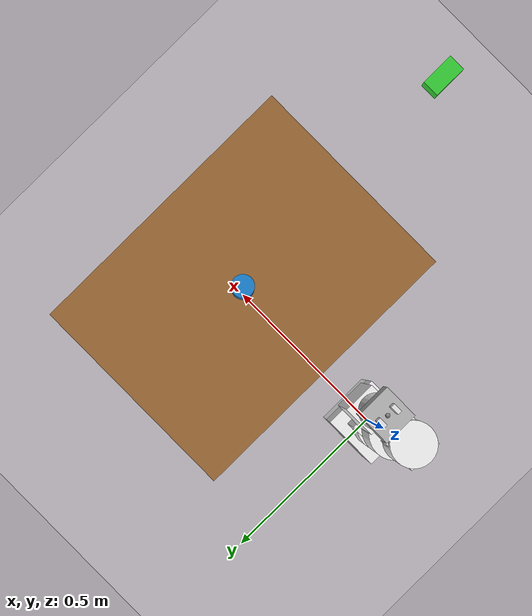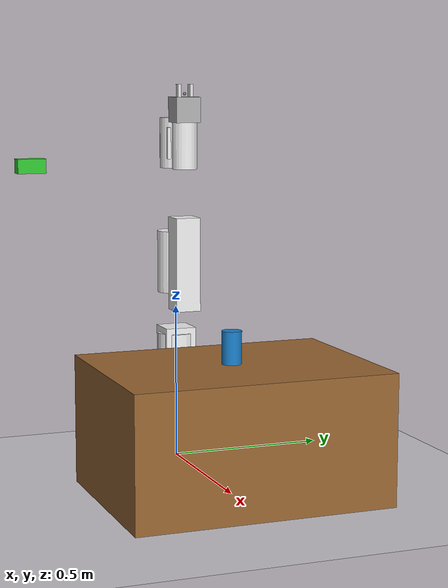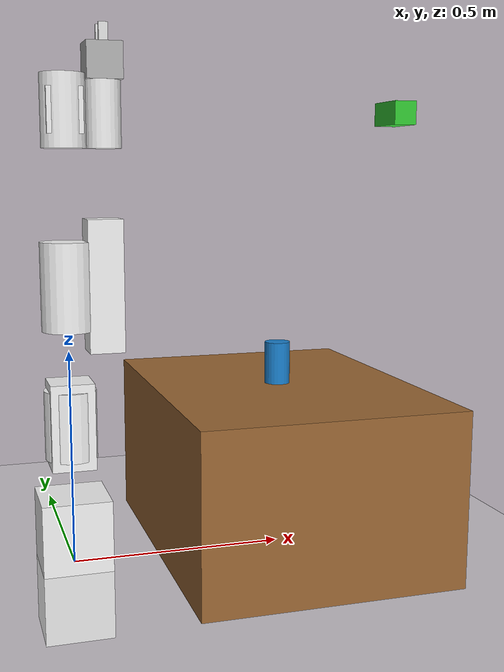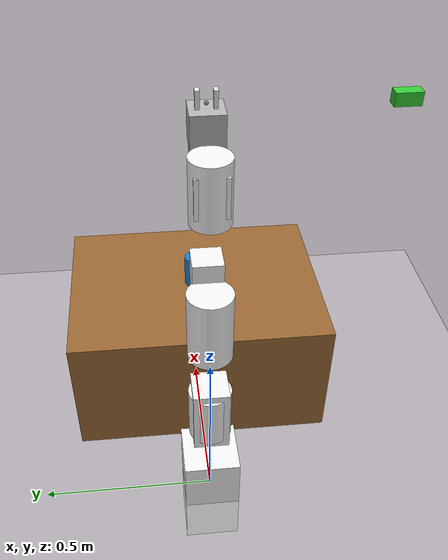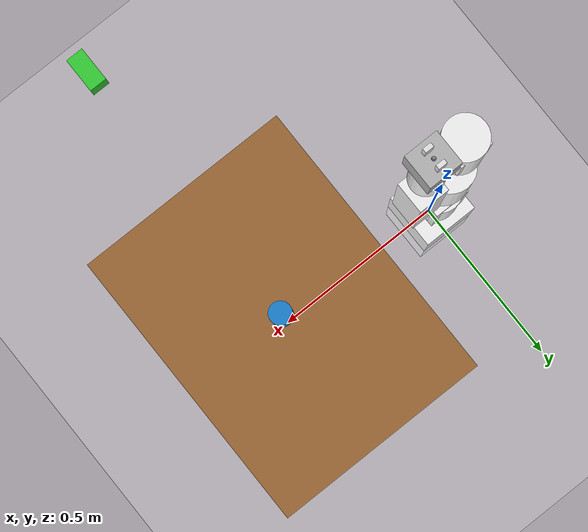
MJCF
<mujoco model="simple_grasp">
  <compiler angle="radian" autolimits="true"/>
  <option gravity="0 0 -9.81" timestep="0.002"/>

  <worldbody>
    <light pos="0 0 2" dir="0 0 -1" directional="true"/>
    <geom name="floor" type="plane" size="2 2 0.1" rgba="0.9 0.9 0.9 1"/>

    <!-- Table -->
    <body name="table" pos="0.5 0 0.2">
      <geom type="box" size="0.3 0.4 0.2" rgba="0.6 0.4 0.2 1"/>
    </body>

    <!-- Target object (graspable cylinder/cup) -->
    <body name="target_object" pos="0.5 0 0.45">
      <freejoint/>
      <geom type="cylinder" size="0.03 0.05" rgba="0.1 0.5 0.8 1" mass="0.1"/>
      <inertial pos="0 0 0" mass="0.1" diaginertia="0.0001 0.0001 0.0001"/>
    </body>

    <!-- Simple Panda arm (using boxes as approximate geometry) -->
    <body name="panda_link0" pos="0 0 0">
      <geom type="box" size="0.08 0.08 0.165" rgba="0.95 0.95 0.95 1"/>

      <body name="panda_link1" pos="0 0 0.333">
        <joint name="panda_joint1" type="hinge" axis="0 0 1" range="-2.8973 2.8973" damping="1"/>
        <geom type="cylinder" size="0.06 0.08" rgba="0.95 0.95 0.95 1"/>

        <body name="panda_link2" pos="0 0 0">
          <joint name="panda_joint2" type="hinge" axis="0 0 1" range="-1.7628 1.7628" damping="1"/>
          <geom type="box" size="0.05 0.05 0.1" rgba="0.95 0.95 0.95 1"/>

          <body name="panda_link3" pos="0 0 0.316">
            <joint name="panda_joint3" type="hinge" axis="0 0 1" range="-2.8973 2.8973" damping="1"/>
            <geom type="cylinder" size="0.06 0.1" rgba="0.95 0.95 0.95 1"/>

            <body name="panda_link4" pos="0.0825 0 0">
              <joint name="panda_joint4" type="hinge" axis="0 0 1" range="-3.0718 -0.0698" damping="1"/>
              <geom type="box" size="0.04 0.04 0.15" rgba="0.95 0.95 0.95 1"/>

              <body name="panda_link5" pos="-0.0825 0 0.384">
                <joint name="panda_joint5" type="hinge" axis="0 0 1" range="-2.8973 2.8973" damping="1"/>
                <geom type="cylinder" size="0.05 0.08" rgba="0.95 0.95 0.95 1"/>

                <body name="panda_link6" pos="0 0 0">
                  <joint name="panda_joint6" type="hinge" axis="0 0 1" range="-0.0175 3.7525" damping="1"/>
                  <geom type="box" size="0.04 0.04 0.05" rgba="0.95 0.95 0.95 1"/>

                  <body name="panda_link7" pos="0.088 0 0">
                    <joint name="panda_joint7" type="hinge" axis="0 0 1" range="-2.8973 2.8973" damping="1"/>
                    <geom type="cylinder" size="0.04 0.08" rgba="0.95 0.95 0.95 1"/>

                    <!-- End effector / gripper -->
                    <body name="panda_hand" pos="0 0 0.107">
                      <geom type="box" size="0.04 0.04 0.04" rgba="0.7 0.7 0.7 1"/>
                      <site name="ee_site" pos="0 0 0.05"/>

                      <!-- Left finger -->
                      <body name="left_finger" pos="0 0.02 0.05">
                        <joint name="finger_joint1" type="slide" axis="0 1 0" range="0 0.04" damping="0.5"/>
                        <geom type="box" size="0.01 0.005 0.03" rgba="0.9 0.9 0.9 1"/>
                      </body>

                      <!-- Right finger -->
                      <body name="right_finger" pos="0 -0.02 0.05">
                        <joint name="finger_joint2" type="slide" axis="0 -1 0" range="0 0.04" damping="0.5"/>
                        <geom type="box" size="0.01 0.005 0.03" rgba="0.9 0.9 0.9 1"/>
                      </body>
                    </body>
                  </body>
                </body>
              </body>
            </body>
          </body>
        </body>
      </body>
    </body>

    <!-- Perception camera -->
    <body name="perception_camera_body" pos="0.5 -0.6 1.0">
      <camera name="perception_camera" pos="0 0 0" quat="0.924 0.383 0 0" fovy="45"/>
      <geom type="box" size="0.02 0.04 0.02" rgba="0.2 0.8 0.2 1" contype="0" conaffinity="0"/>
    </body>
  </worldbody>

  <actuator>
    <position name="panda_actuator1" joint="panda_joint1" kp="500"/>
    <position name="panda_actuator2" joint="panda_joint2" kp="500"/>
    <position name="panda_actuator3" joint="panda_joint3" kp="500"/>
    <position name="panda_actuator4" joint="panda_joint4" kp="500"/>
    <position name="panda_actuator5" joint="panda_joint5" kp="500"/>
    <position name="panda_actuator6" joint="panda_joint6" kp="500"/>
    <position name="panda_actuator7" joint="panda_joint7" kp="500"/>
    <position name="finger_actuator1" joint="finger_joint1" kp="100"/>
    <position name="finger_actuator2" joint="finger_joint2" kp="100"/>
  </actuator>
</mujoco>
